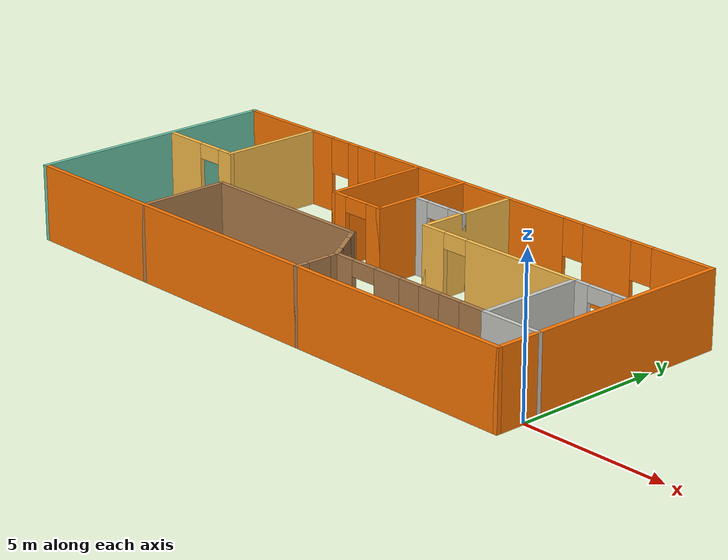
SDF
<?xml version='1.0'?>
<sdf version='1.6'>
  <model name='Building'>
    <pose frame=''>-10 3.25 0 0 -0 0</pose>
    <link name='Wall_0'>
      <collision name='Wall_0_Collision'>
        <geometry>
          <box>
            <size>20.15 0.15 2.5</size>
          </box>
        </geometry>
        <pose frame=''>0 0 1.25 0 -0 0</pose>
      </collision>
      <visual name='Wall_0_Visual'>
        <pose frame=''>0 0 1.25 0 -0 0</pose>
        <geometry>
          <box>
            <size>20.15 0.15 2.5</size>
          </box>
        </geometry>
        <material>
          <script>
            <uri>file://media/materials/scripts/gazebo.material</uri>
            <name>Gazebo/Grey</name>
          </script>
          <ambient>0.996078 0.47451 0.0196078 1</ambient>
        </material>
      </visual>
      <pose frame=''>0 -4.25 0 0 -0 0</pose>
    </link>
    <link name='Wall_10'>
      <pose frame=''>-8.5 0.75 0 0 -0 3.14159</pose>
      <visual name='Wall_10_Visual_0'>
        <pose frame=''>-1.26846 0 1.25 0 -0 0</pose>
        <geometry>
          <box>
            <size>0.613081 0.15 2.5</size>
          </box>
        </geometry>
        <material>
          <script>
            <uri>file://media/materials/scripts/gazebo.material</uri>
            <name>Gazebo/Grey</name>
          </script>
          <ambient>1 0.764706 0.305882 1</ambient>
        </material>
      </visual>
      <collision name='Wall_10_Collision_0'>
        <geometry>
          <box>
            <size>0.613081 0.15 2.5</size>
          </box>
        </geometry>
        <pose frame=''>-1.26846 0 1.25 0 -0 0</pose>
      </collision>
      <visual name='Wall_10_Visual_1'>
        <pose frame=''>0.75654 0 1.25 0 -0 0</pose>
        <geometry>
          <box>
            <size>1.63692 0.15 2.5</size>
          </box>
        </geometry>
        <material>
          <script>
            <uri>file://media/materials/scripts/gazebo.material</uri>
            <name>Gazebo/Grey</name>
          </script>
          <ambient>1 0.764706 0.305882 1</ambient>
        </material>
      </visual>
      <collision name='Wall_10_Collision_1'>
        <geometry>
          <box>
            <size>1.63692 0.15 2.5</size>
          </box>
        </geometry>
        <pose frame=''>0.75654 0 1.25 0 -0 0</pose>
      </collision>
      <visual name='Wall_10_Visual_2'>
        <pose frame=''>-0.511919 0 2.25 0 -0 0</pose>
        <geometry>
          <box>
            <size>0.9 0.15 0.5</size>
          </box>
        </geometry>
        <material>
          <script>
            <uri>file://media/materials/scripts/gazebo.material</uri>
            <name>Gazebo/Grey</name>
          </script>
          <ambient>1 0.764706 0.305882 1</ambient>
        </material>
      </visual>
      <collision name='Wall_10_Collision_2'>
        <geometry>
          <box>
            <size>0.9 0.15 0.5</size>
          </box>
        </geometry>
        <pose frame=''>-0.511919 0 2.25 0 -0 0</pose>
      </collision>
    </link>
    <link name='Wall_12'>
      <collision name='Wall_12_Collision'>
        <geometry>
          <box>
            <size>3.65 0.15 2.5</size>
          </box>
        </geometry>
        <pose frame=''>0 0 1.25 0 -0 0</pose>
      </collision>
      <visual name='Wall_12_Visual'>
        <pose frame=''>0 0 1.25 0 -0 0</pose>
        <geometry>
          <box>
            <size>3.65 0.15 2.5</size>
          </box>
        </geometry>
        <material>
          <script>
            <uri>file://media/materials/scripts/gazebo.material</uri>
            <name>Gazebo/Grey</name>
          </script>
          <ambient>0.996078 0.47451 0.0196078 1</ambient>
        </material>
      </visual>
      <pose frame=''>-2 2.5 0 0 0 -1.5708</pose>
    </link>
    <link name='Wall_14'>
      <collision name='Wall_14_Collision'>
        <geometry>
          <box>
            <size>3.65 0.15 2.5</size>
          </box>
        </geometry>
        <pose frame=''>0 0 1.25 0 -0 0</pose>
      </collision>
      <visual name='Wall_14_Visual'>
        <pose frame=''>0 0 1.25 0 -0 0</pose>
        <geometry>
          <box>
            <size>3.65 0.15 2.5</size>
          </box>
        </geometry>
        <material>
          <script>
            <uri>file://media/materials/scripts/gazebo.material</uri>
            <name>Gazebo/Grey</name>
          </script>
          <ambient>1 0.764706 0.305882 1</ambient>
        </material>
      </visual>
      <pose frame=''>2 2.5 0 0 -0 1.5708</pose>
    </link>
    <link name='Wall_16'>
      <pose frame=''>-1 0.75 0 0 -0 0</pose>
      <visual name='Wall_16_Visual_0'>
        <pose frame=''>-0.758614 0 1.25 0 -0 0</pose>
        <geometry>
          <box>
            <size>0.632771 0.15 2.5</size>
          </box>
        </geometry>
        <material>
          <script>
            <uri>file://media/materials/scripts/gazebo.material</uri>
            <name>Gazebo/Grey</name>
          </script>
          <ambient>0.996078 0.47451 0.0196078 1</ambient>
        </material>
      </visual>
      <collision name='Wall_16_Collision_0'>
        <geometry>
          <box>
            <size>0.632771 0.15 2.5</size>
          </box>
        </geometry>
        <pose frame=''>-0.758614 0 1.25 0 -0 0</pose>
      </collision>
      <visual name='Wall_16_Visual_1'>
        <pose frame=''>0.766386 0 1.25 0 -0 0</pose>
        <geometry>
          <box>
            <size>0.617229 0.15 2.5</size>
          </box>
        </geometry>
        <material>
          <script>
            <uri>file://media/materials/scripts/gazebo.material</uri>
            <name>Gazebo/Grey</name>
          </script>
          <ambient>0.996078 0.47451 0.0196078 1</ambient>
        </material>
      </visual>
      <collision name='Wall_16_Collision_1'>
        <geometry>
          <box>
            <size>0.617229 0.15 2.5</size>
          </box>
        </geometry>
        <pose frame=''>0.766386 0 1.25 0 -0 0</pose>
      </collision>
      <visual name='Wall_16_Visual_2'>
        <pose frame=''>0.007771 0 2.25 0 -0 0</pose>
        <geometry>
          <box>
            <size>0.9 0.15 0.5</size>
          </box>
        </geometry>
        <material>
          <script>
            <uri>file://media/materials/scripts/gazebo.material</uri>
            <name>Gazebo/Grey</name>
          </script>
          <ambient>0.996078 0.47451 0.0196078 1</ambient>
        </material>
      </visual>
      <collision name='Wall_16_Collision_2'>
        <geometry>
          <box>
            <size>0.9 0.15 0.5</size>
          </box>
        </geometry>
        <pose frame=''>0.007771 0 2.25 0 -0 0</pose>
      </collision>
    </link>
    <link name='Wall_17'>
      <collision name='Wall_17_Collision'>
        <geometry>
          <box>
            <size>3.65 0.15 2.5</size>
          </box>
        </geometry>
        <pose frame=''>0 0 1.25 0 -0 0</pose>
      </collision>
      <visual name='Wall_17_Visual'>
        <pose frame=''>0 0 1.25 0 -0 0</pose>
        <geometry>
          <box>
            <size>3.65 0.15 2.5</size>
          </box>
        </geometry>
        <material>
          <script>
            <uri>file://media/materials/scripts/gazebo.material</uri>
            <name>Gazebo/Grey</name>
          </script>
          <ambient>0.996078 0.47451 0.0196078 1</ambient>
        </material>
      </visual>
      <pose frame=''>0 2.5 0 0 -0 1.5708</pose>
    </link>
    <link name='Wall_19'>
      <pose frame=''>1 2.25 0 0 -0 0</pose>
      <visual name='Wall_19_Visual_0'>
        <pose frame=''>-0.761107 0 1.25 0 -0 0</pose>
        <geometry>
          <box>
            <size>0.627787 0.15 2.5</size>
          </box>
        </geometry>
        <material>
          <script>
            <uri>file://media/materials/scripts/gazebo.material</uri>
            <name>Gazebo/CeilingTiled</name>
          </script>
          <ambient>1 0.764706 0.305882 1</ambient>
        </material>
      </visual>
      <collision name='Wall_19_Collision_0'>
        <geometry>
          <box>
            <size>0.627787 0.15 2.5</size>
          </box>
        </geometry>
        <pose frame=''>-0.761107 0 1.25 0 -0 0</pose>
      </collision>
      <visual name='Wall_19_Visual_1'>
        <pose frame=''>0.763893 0 1.25 0 -0 0</pose>
        <geometry>
          <box>
            <size>0.622213 0.15 2.5</size>
          </box>
        </geometry>
        <material>
          <script>
            <uri>file://media/materials/scripts/gazebo.material</uri>
            <name>Gazebo/CeilingTiled</name>
          </script>
          <ambient>1 0.764706 0.305882 1</ambient>
        </material>
      </visual>
      <collision name='Wall_19_Collision_1'>
        <geometry>
          <box>
            <size>0.622213 0.15 2.5</size>
          </box>
        </geometry>
        <pose frame=''>0.763893 0 1.25 0 -0 0</pose>
      </collision>
      <visual name='Wall_19_Visual_2'>
        <pose frame=''>0.002787 0 2.25 0 -0 0</pose>
        <geometry>
          <box>
            <size>0.9 0.15 0.5</size>
          </box>
        </geometry>
        <material>
          <script>
            <uri>file://media/materials/scripts/gazebo.material</uri>
            <name>Gazebo/CeilingTiled</name>
          </script>
          <ambient>1 0.764706 0.305882 1</ambient>
        </material>
      </visual>
      <collision name='Wall_19_Collision_2'>
        <geometry>
          <box>
            <size>0.9 0.15 0.5</size>
          </box>
        </geometry>
        <pose frame=''>0.002787 0 2.25 0 -0 0</pose>
      </collision>
    </link>
    <link name='Wall_2'>
      <collision name='Wall_2_Collision'>
        <geometry>
          <box>
            <size>8.65 0.15 2.5</size>
          </box>
        </geometry>
        <pose frame=''>0 0 1.25 0 -0 0</pose>
      </collision>
      <visual name='Wall_2_Visual'>
        <pose frame=''>0 0 1.25 0 -0 0</pose>
        <geometry>
          <box>
            <size>8.65 0.15 2.5</size>
          </box>
        </geometry>
        <material>
          <script>
            <uri>file://media/materials/scripts/gazebo.material</uri>
            <name>Gazebo/Grey</name>
          </script>
          <ambient>0.435294 0.796078 0.67451 1</ambient>
        </material>
      </visual>
      <pose frame=''>-10 0 0 0 -0 1.5708</pose>
    </link>
    <link name='Wall_25'>
      <collision name='Wall_25_Collision'>
        <geometry>
          <box>
            <size>2.15 0.15 2.5</size>
          </box>
        </geometry>
        <pose frame=''>0 0 1.25 0 -0 0</pose>
      </collision>
      <visual name='Wall_25_Visual'>
        <pose frame=''>0 0 1.25 0 -0 0</pose>
        <geometry>
          <box>
            <size>2.15 0.15 2.5</size>
          </box>
        </geometry>
        <material>
          <script>
            <uri>file://media/materials/scripts/gazebo.material</uri>
            <name>Gazebo/CeilingTiled</name>
          </script>
          <ambient>1 1 1 1</ambient>
        </material>
      </visual>
      <pose frame=''>9 -2.75 0 0 -0 0</pose>
    </link>
    <link name='Wall_27'>
      <pose frame=''>5 0.75 0 0 -0 0</pose>
      <visual name='Wall_27_Visual_0'>
        <pose frame=''>-2.6173 0 1.25 0 -0 0</pose>
        <geometry>
          <box>
            <size>0.915403 0.15 2.5</size>
          </box>
        </geometry>
        <material>
          <script>
            <uri>file://media/materials/scripts/gazebo.material</uri>
            <name>Gazebo/Grey</name>
          </script>
          <ambient>1 0.764706 0.305882 1</ambient>
        </material>
      </visual>
      <collision name='Wall_27_Collision_0'>
        <geometry>
          <box>
            <size>0.915403 0.15 2.5</size>
          </box>
        </geometry>
        <pose frame=''>-2.6173 0 1.25 0 -0 0</pose>
      </collision>
      <visual name='Wall_27_Visual_1'>
        <pose frame=''>0.907702 0 1.25 0 -0 0</pose>
        <geometry>
          <box>
            <size>4.3346 0.15 2.5</size>
          </box>
        </geometry>
        <material>
          <script>
            <uri>file://media/materials/scripts/gazebo.material</uri>
            <name>Gazebo/Grey</name>
          </script>
          <ambient>1 0.764706 0.305882 1</ambient>
        </material>
      </visual>
      <collision name='Wall_27_Collision_1'>
        <geometry>
          <box>
            <size>4.3346 0.15 2.5</size>
          </box>
        </geometry>
        <pose frame=''>0.907702 0 1.25 0 -0 0</pose>
      </collision>
      <visual name='Wall_27_Visual_2'>
        <pose frame=''>-1.7096 0 2.25 0 -0 0</pose>
        <geometry>
          <box>
            <size>0.9 0.15 0.5</size>
          </box>
        </geometry>
        <material>
          <script>
            <uri>file://media/materials/scripts/gazebo.material</uri>
            <name>Gazebo/Grey</name>
          </script>
          <ambient>1 0.764706 0.305882 1</ambient>
        </material>
      </visual>
      <collision name='Wall_27_Collision_2'>
        <geometry>
          <box>
            <size>0.9 0.15 0.5</size>
          </box>
        </geometry>
        <pose frame=''>-1.7096 0 2.25 0 -0 0</pose>
      </collision>
    </link>
    <link name='Wall_29'>
      <collision name='Wall_29_Collision'>
        <geometry>
          <box>
            <size>3.65 0.15 2.5</size>
          </box>
        </geometry>
        <pose frame=''>0 0 1.25 0 -0 0</pose>
      </collision>
      <visual name='Wall_29_Visual'>
        <pose frame=''>0 0 1.25 0 -0 0</pose>
        <geometry>
          <box>
            <size>3.65 0.15 2.5</size>
          </box>
        </geometry>
        <material>
          <script>
            <uri>file://media/materials/scripts/gazebo.material</uri>
            <name>Gazebo/CeilingTiled</name>
          </script>
          <ambient>1 1 1 1</ambient>
        </material>
      </visual>
      <pose frame=''>8 -1 0 0 0 -1.5708</pose>
    </link>
    <link name='Wall_31'>
      <pose frame=''>9 0.75 0 0 -0 0</pose>
      <visual name='Wall_31_Visual_0'>
        <pose frame=''>-0.757777 0 1.25 0 -0 0</pose>
        <geometry>
          <box>
            <size>0.634446 0.15 2.5</size>
          </box>
        </geometry>
        <material>
          <script>
            <uri>file://media/materials/scripts/gazebo.material</uri>
            <name>Gazebo/CeilingTiled</name>
          </script>
          <ambient>1 1 1 1</ambient>
        </material>
      </visual>
      <collision name='Wall_31_Collision_0'>
        <geometry>
          <box>
            <size>0.634446 0.15 2.5</size>
          </box>
        </geometry>
        <pose frame=''>-0.757777 0 1.25 0 -0 0</pose>
      </collision>
      <visual name='Wall_31_Visual_1'>
        <pose frame=''>0.767223 0 1.25 0 -0 0</pose>
        <geometry>
          <box>
            <size>0.615554 0.15 2.5</size>
          </box>
        </geometry>
        <material>
          <script>
            <uri>file://media/materials/scripts/gazebo.material</uri>
            <name>Gazebo/CeilingTiled</name>
          </script>
          <ambient>1 1 1 1</ambient>
        </material>
      </visual>
      <collision name='Wall_31_Collision_1'>
        <geometry>
          <box>
            <size>0.615554 0.15 2.5</size>
          </box>
        </geometry>
        <pose frame=''>0.767223 0 1.25 0 -0 0</pose>
      </collision>
      <visual name='Wall_31_Visual_2'>
        <pose frame=''>0.009446 0 2.25 0 -0 0</pose>
        <geometry>
          <box>
            <size>0.9 0.15 0.5</size>
          </box>
        </geometry>
        <material>
          <script>
            <uri>file://media/materials/scripts/gazebo.material</uri>
            <name>Gazebo/CeilingTiled</name>
          </script>
          <ambient>1 1 1 1</ambient>
        </material>
      </visual>
      <collision name='Wall_31_Collision_2'>
        <geometry>
          <box>
            <size>0.9 0.15 0.5</size>
          </box>
        </geometry>
        <pose frame=''>0.009446 0 2.25 0 -0 0</pose>
      </collision>
    </link>
    <link name='Wall_35'>
      <collision name='Wall_35_Collision'>
        <geometry>
          <box>
            <size>3.15 0.15 2.5</size>
          </box>
        </geometry>
        <pose frame=''>0 0 1.25 0 -0 0</pose>
      </collision>
      <visual name='Wall_35_Visual'>
        <pose frame=''>0 0 1.25 0 -0 0</pose>
        <geometry>
          <box>
            <size>3.15 0.15 2.5</size>
          </box>
        </geometry>
        <material>
          <script>
            <uri>file://media/materials/scripts/gazebo.material</uri>
            <name>Gazebo/Wood</name>
          </script>
          <ambient>0.996078 0.47451 0.0196078 1</ambient>
        </material>
      </visual>
      <pose frame=''>-5 -2.75 0 0 0 -1.5708</pose>
    </link>
    <link name='Wall_37'>
      <collision name='Wall_37_Collision'>
        <geometry>
          <box>
            <size>6.15 0.15 2.5</size>
          </box>
        </geometry>
        <pose frame=''>0 0 1.25 0 -0 0</pose>
      </collision>
      <visual name='Wall_37_Visual'>
        <pose frame=''>0 0 1.25 0 -0 0</pose>
        <geometry>
          <box>
            <size>6.15 0.15 2.5</size>
          </box>
        </geometry>
        <material>
          <script>
            <uri>file://media/materials/scripts/gazebo.material</uri>
            <name>Gazebo/Wood</name>
          </script>
          <ambient>0.996078 0.47451 0.0196078 1</ambient>
        </material>
      </visual>
      <pose frame=''>-2 -1.25 0 0 -0 0</pose>
    </link>
    <link name='Wall_39'>
      <pose frame=''>2 -3.5 0 0 -0 1.5708</pose>
      <visual name='Wall_39_Visual_0'>
        <pose frame=''>-0.594128 0 1.25 0 -0 0</pose>
        <geometry>
          <box>
            <size>0.461743 0.15 2.5</size>
          </box>
        </geometry>
        <material>
          <script>
            <uri>file://media/materials/scripts/gazebo.material</uri>
            <name>Gazebo/Wood</name>
          </script>
          <ambient>0.996078 0.47451 0.0196078 1</ambient>
        </material>
      </visual>
      <collision name='Wall_39_Collision_0'>
        <geometry>
          <box>
            <size>0.461743 0.15 2.5</size>
          </box>
        </geometry>
        <pose frame=''>-0.594128 0 1.25 0 -0 0</pose>
      </collision>
      <visual name='Wall_39_Visual_1'>
        <pose frame=''>0.230872 0 0.25 0 -0 0</pose>
        <geometry>
          <box>
            <size>1.18826 0.15 0.5</size>
          </box>
        </geometry>
        <material>
          <script>
            <uri>file://media/materials/scripts/gazebo.material</uri>
            <name>Gazebo/Wood</name>
          </script>
          <ambient>0.996078 0.47451 0.0196078 1</ambient>
        </material>
      </visual>
      <collision name='Wall_39_Collision_1'>
        <geometry>
          <box>
            <size>1.18826 0.15 0.5</size>
          </box>
        </geometry>
        <pose frame=''>0.230872 0 0.25 0 -0 0</pose>
      </collision>
      <visual name='Wall_39_Visual_2'>
        <pose frame=''>0.630872 0 1.5 0 -0 0</pose>
        <geometry>
          <box>
            <size>0.388257 0.15 2</size>
          </box>
        </geometry>
        <material>
          <script>
            <uri>file://media/materials/scripts/gazebo.material</uri>
            <name>Gazebo/Wood</name>
          </script>
          <ambient>0.996078 0.47451 0.0196078 1</ambient>
        </material>
      </visual>
      <collision name='Wall_39_Collision_2'>
        <geometry>
          <box>
            <size>0.388257 0.15 2</size>
          </box>
        </geometry>
        <pose frame=''>0.630872 0 1.5 0 -0 0</pose>
      </collision>
      <visual name='Wall_39_Visual_3'>
        <pose frame=''>0.036743 0 1.9 0 -0 0</pose>
        <geometry>
          <box>
            <size>0.8 0.15 1.2</size>
          </box>
        </geometry>
        <material>
          <script>
            <uri>file://media/materials/scripts/gazebo.material</uri>
            <name>Gazebo/Wood</name>
          </script>
          <ambient>0.996078 0.47451 0.0196078 1</ambient>
        </material>
      </visual>
      <collision name='Wall_39_Collision_3'>
        <geometry>
          <box>
            <size>0.8 0.15 1.2</size>
          </box>
        </geometry>
        <pose frame=''>0.036743 0 1.9 0 -0 0</pose>
      </collision>
    </link>
    <link name='Wall_4'>
      <pose frame=''>0 4.25 0 0 -0 0</pose>
      <visual name='Wall_4_Visual_0'>
        <pose frame=''>-8.04057 0 1.25 0 -0 0</pose>
        <geometry>
          <box>
            <size>4.06886 0.15 2.5</size>
          </box>
        </geometry>
        <material>
          <script>
            <uri>file://media/materials/scripts/gazebo.material</uri>
            <name>Gazebo/Grey</name>
          </script>
          <ambient>0.996078 0.47451 0.0196078 1</ambient>
        </material>
      </visual>
      <collision name='Wall_4_Collision_0'>
        <geometry>
          <box>
            <size>4.06886 0.15 2.5</size>
          </box>
        </geometry>
        <pose frame=''>-8.04057 0 1.25 0 -0 0</pose>
      </collision>
      <visual name='Wall_4_Visual_1'>
        <pose frame=''>2.03443 0 0.25 0 -0 0</pose>
        <geometry>
          <box>
            <size>16.0811 0.15 0.5</size>
          </box>
        </geometry>
        <material>
          <script>
            <uri>file://media/materials/scripts/gazebo.material</uri>
            <name>Gazebo/Grey</name>
          </script>
          <ambient>0.996078 0.47451 0.0196078 1</ambient>
        </material>
      </visual>
      <collision name='Wall_4_Collision_1'>
        <geometry>
          <box>
            <size>16.0811 0.15 0.5</size>
          </box>
        </geometry>
        <pose frame=''>2.03443 0 0.25 0 -0 0</pose>
      </collision>
      <visual name='Wall_4_Visual_2'>
        <pose frame=''>-4.97904 0 1.5 0 -0 0</pose>
        <geometry>
          <box>
            <size>0.4542 0.15 2</size>
          </box>
        </geometry>
        <material>
          <script>
            <uri>file://media/materials/scripts/gazebo.material</uri>
            <name>Gazebo/Grey</name>
          </script>
          <ambient>0.996078 0.47451 0.0196078 1</ambient>
        </material>
      </visual>
      <collision name='Wall_4_Collision_2'>
        <geometry>
          <box>
            <size>0.4542 0.15 2</size>
          </box>
        </geometry>
        <pose frame=''>-4.97904 0 1.5 0 -0 0</pose>
      </collision>
      <visual name='Wall_4_Visual_3'>
        <pose frame=''>0.175411 0 1.5 0 -0 0</pose>
        <geometry>
          <box>
            <size>8.25471 0.15 2</size>
          </box>
        </geometry>
        <material>
          <script>
            <uri>file://media/materials/scripts/gazebo.material</uri>
            <name>Gazebo/Grey</name>
          </script>
          <ambient>0.996078 0.47451 0.0196078 1</ambient>
        </material>
      </visual>
      <collision name='Wall_4_Collision_3'>
        <geometry>
          <box>
            <size>8.25471 0.15 2</size>
          </box>
        </geometry>
        <pose frame=''>0.175411 0 1.5 0 -0 0</pose>
      </collision>
      <visual name='Wall_4_Visual_4'>
        <pose frame=''>6.04873 0 1.5 0 -0 0</pose>
        <geometry>
          <box>
            <size>1.89194 0.15 2</size>
          </box>
        </geometry>
        <material>
          <script>
            <uri>file://media/materials/scripts/gazebo.material</uri>
            <name>Gazebo/Grey</name>
          </script>
          <ambient>0.996078 0.47451 0.0196078 1</ambient>
        </material>
      </visual>
      <collision name='Wall_4_Collision_4'>
        <geometry>
          <box>
            <size>1.89194 0.15 2</size>
          </box>
        </geometry>
        <pose frame=''>6.04873 0 1.5 0 -0 0</pose>
      </collision>
      <visual name='Wall_4_Visual_5'>
        <pose frame=''>8.93485 0 1.5 0 -0 0</pose>
        <geometry>
          <box>
            <size>2.2803 0.15 2</size>
          </box>
        </geometry>
        <material>
          <script>
            <uri>file://media/materials/scripts/gazebo.material</uri>
            <name>Gazebo/Grey</name>
          </script>
          <ambient>0.996078 0.47451 0.0196078 1</ambient>
        </material>
      </visual>
      <collision name='Wall_4_Collision_5'>
        <geometry>
          <box>
            <size>2.2803 0.15 2</size>
          </box>
        </geometry>
        <pose frame=''>8.93485 0 1.5 0 -0 0</pose>
      </collision>
      <visual name='Wall_4_Visual_6'>
        <pose frame=''>-5.60614 0 1.9 0 -0 0</pose>
        <geometry>
          <box>
            <size>0.8 0.15 1.2</size>
          </box>
        </geometry>
        <material>
          <script>
            <uri>file://media/materials/scripts/gazebo.material</uri>
            <name>Gazebo/Grey</name>
          </script>
          <ambient>0.996078 0.47451 0.0196078 1</ambient>
        </material>
      </visual>
      <collision name='Wall_4_Collision_6'>
        <geometry>
          <box>
            <size>0.8 0.15 1.2</size>
          </box>
        </geometry>
        <pose frame=''>-5.60614 0 1.9 0 -0 0</pose>
      </collision>
      <visual name='Wall_4_Visual_7'>
        <pose frame=''>-4.35194 0 1.9 0 -0 0</pose>
        <geometry>
          <box>
            <size>0.8 0.15 1.2</size>
          </box>
        </geometry>
        <material>
          <script>
            <uri>file://media/materials/scripts/gazebo.material</uri>
            <name>Gazebo/Grey</name>
          </script>
          <ambient>0.996078 0.47451 0.0196078 1</ambient>
        </material>
      </visual>
      <collision name='Wall_4_Collision_7'>
        <geometry>
          <box>
            <size>0.8 0.15 1.2</size>
          </box>
        </geometry>
        <pose frame=''>-4.35194 0 1.9 0 -0 0</pose>
      </collision>
      <visual name='Wall_4_Visual_8'>
        <pose frame=''>4.70276 0 1.9 0 -0 0</pose>
        <geometry>
          <box>
            <size>0.8 0.15 1.2</size>
          </box>
        </geometry>
        <material>
          <script>
            <uri>file://media/materials/scripts/gazebo.material</uri>
            <name>Gazebo/Grey</name>
          </script>
          <ambient>0.996078 0.47451 0.0196078 1</ambient>
        </material>
      </visual>
      <collision name='Wall_4_Collision_8'>
        <geometry>
          <box>
            <size>0.8 0.15 1.2</size>
          </box>
        </geometry>
        <pose frame=''>4.70276 0 1.9 0 -0 0</pose>
      </collision>
      <visual name='Wall_4_Visual_9'>
        <pose frame=''>7.3947 0 1.9 0 -0 0</pose>
        <geometry>
          <box>
            <size>0.8 0.15 1.2</size>
          </box>
        </geometry>
        <material>
          <script>
            <uri>file://media/materials/scripts/gazebo.material</uri>
            <name>Gazebo/Grey</name>
          </script>
          <ambient>0.996078 0.47451 0.0196078 1</ambient>
        </material>
      </visual>
      <collision name='Wall_4_Collision_9'>
        <geometry>
          <box>
            <size>0.8 0.15 1.2</size>
          </box>
        </geometry>
        <pose frame=''>7.3947 0 1.9 0 -0 0</pose>
      </collision>
    </link>
    <link name='Wall_41'>
      <pose frame=''>1.5 -2 0 0 0 -0.982794</pose>
      <visual name='Wall_41_Visual_0'>
        <pose frame=''>-0.69985 0 1.25 0 -0 0</pose>
        <geometry>
          <box>
            <size>0.553076 0.15 2.5</size>
          </box>
        </geometry>
        <material>
          <script>
            <uri>file://media/materials/scripts/gazebo.material</uri>
            <name>Gazebo/Wood</name>
          </script>
          <ambient>0.996078 0.47451 0.0196078 1</ambient>
        </material>
      </visual>
      <collision name='Wall_41_Collision_0'>
        <geometry>
          <box>
            <size>0.553076 0.15 2.5</size>
          </box>
        </geometry>
        <pose frame=''>-0.69985 0 1.25 0 -0 0</pose>
      </collision>
      <visual name='Wall_41_Visual_1'>
        <pose frame=''>0.726538 0 1.25 0 -0 0</pose>
        <geometry>
          <box>
            <size>0.4997 0.15 2.5</size>
          </box>
        </geometry>
        <material>
          <script>
            <uri>file://media/materials/scripts/gazebo.material</uri>
            <name>Gazebo/Wood</name>
          </script>
          <ambient>0.996078 0.47451 0.0196078 1</ambient>
        </material>
      </visual>
      <collision name='Wall_41_Collision_1'>
        <geometry>
          <box>
            <size>0.4997 0.15 2.5</size>
          </box>
        </geometry>
        <pose frame=''>0.726538 0 1.25 0 -0 0</pose>
      </collision>
      <visual name='Wall_41_Visual_2'>
        <pose frame=''>0.026688 0 2.25 0 -0 0</pose>
        <geometry>
          <box>
            <size>0.9 0.15 0.5</size>
          </box>
        </geometry>
        <material>
          <script>
            <uri>file://media/materials/scripts/gazebo.material</uri>
            <name>Gazebo/Wood</name>
          </script>
          <ambient>0.996078 0.47451 0.0196078 1</ambient>
        </material>
      </visual>
      <collision name='Wall_41_Collision_2'>
        <geometry>
          <box>
            <size>0.9 0.15 0.5</size>
          </box>
        </geometry>
        <pose frame=''>0.026688 0 2.25 0 -0 0</pose>
      </collision>
    </link>
    <link name='Wall_43'>
      <pose frame=''>5 -2.75 0 0 -0 0</pose>
      <visual name='Wall_43_Visual_0'>
        <pose frame=''>-2.67402 0 1.25 0 -0 0</pose>
        <geometry>
          <box>
            <size>0.801957 0.15 2.5</size>
          </box>
        </geometry>
        <material>
          <script>
            <uri>file://media/materials/scripts/gazebo.material</uri>
            <name>Gazebo/Wood</name>
          </script>
          <ambient>1 1 1 1</ambient>
        </material>
      </visual>
      <collision name='Wall_43_Collision_0'>
        <geometry>
          <box>
            <size>0.801957 0.15 2.5</size>
          </box>
        </geometry>
        <pose frame=''>-2.67402 0 1.25 0 -0 0</pose>
      </collision>
      <visual name='Wall_43_Visual_1'>
        <pose frame=''>-0.853736 0 1.25 0 -0 0</pose>
        <geometry>
          <box>
            <size>1.03861 0.15 2.5</size>
          </box>
        </geometry>
        <material>
          <script>
            <uri>file://media/materials/scripts/gazebo.material</uri>
            <name>Gazebo/Wood</name>
          </script>
          <ambient>1 1 1 1</ambient>
        </material>
      </visual>
      <collision name='Wall_43_Collision_1'>
        <geometry>
          <box>
            <size>1.03861 0.15 2.5</size>
          </box>
        </geometry>
        <pose frame=''>-0.853736 0 1.25 0 -0 0</pose>
      </collision>
      <visual name='Wall_43_Visual_2'>
        <pose frame=''>1.37029 0 0.25 0 -0 0</pose>
        <geometry>
          <box>
            <size>3.40943 0.15 0.5</size>
          </box>
        </geometry>
        <material>
          <script>
            <uri>file://media/materials/scripts/gazebo.material</uri>
            <name>Gazebo/Wood</name>
          </script>
          <ambient>1 1 1 1</ambient>
        </material>
      </visual>
      <collision name='Wall_43_Collision_2'>
        <geometry>
          <box>
            <size>3.40943 0.15 0.5</size>
          </box>
        </geometry>
        <pose frame=''>1.37029 0 0.25 0 -0 0</pose>
      </collision>
      <visual name='Wall_43_Visual_3'>
        <pose frame=''>0.863577 0 1.5 0 -0 0</pose>
        <geometry>
          <box>
            <size>0.796012 0.15 2</size>
          </box>
        </geometry>
        <material>
          <script>
            <uri>file://media/materials/scripts/gazebo.material</uri>
            <name>Gazebo/Wood</name>
          </script>
          <ambient>1 1 1 1</ambient>
        </material>
      </visual>
      <collision name='Wall_43_Collision_3'>
        <geometry>
          <box>
            <size>0.796012 0.15 2</size>
          </box>
        </geometry>
        <pose frame=''>0.863577 0 1.5 0 -0 0</pose>
      </collision>
      <visual name='Wall_43_Visual_4'>
        <pose frame=''>2.56829 0 1.5 0 -0 0</pose>
        <geometry>
          <box>
            <size>1.01342 0.15 2</size>
          </box>
        </geometry>
        <material>
          <script>
            <uri>file://media/materials/scripts/gazebo.material</uri>
            <name>Gazebo/Wood</name>
          </script>
          <ambient>1 1 1 1</ambient>
        </material>
      </visual>
      <collision name='Wall_43_Collision_4'>
        <geometry>
          <box>
            <size>1.01342 0.15 2</size>
          </box>
        </geometry>
        <pose frame=''>2.56829 0 1.5 0 -0 0</pose>
      </collision>
      <visual name='Wall_43_Visual_5'>
        <pose frame=''>0.065571 0 1.9 0 -0 0</pose>
        <geometry>
          <box>
            <size>0.8 0.15 1.2</size>
          </box>
        </geometry>
        <material>
          <script>
            <uri>file://media/materials/scripts/gazebo.material</uri>
            <name>Gazebo/Wood</name>
          </script>
          <ambient>1 1 1 1</ambient>
        </material>
      </visual>
      <collision name='Wall_43_Collision_5'>
        <geometry>
          <box>
            <size>0.8 0.15 1.2</size>
          </box>
        </geometry>
        <pose frame=''>0.065571 0 1.9 0 -0 0</pose>
      </collision>
      <visual name='Wall_43_Visual_6'>
        <pose frame=''>1.66158 0 1.9 0 -0 0</pose>
        <geometry>
          <box>
            <size>0.8 0.15 1.2</size>
          </box>
        </geometry>
        <material>
          <script>
            <uri>file://media/materials/scripts/gazebo.material</uri>
            <name>Gazebo/Wood</name>
          </script>
          <ambient>1 1 1 1</ambient>
        </material>
      </visual>
      <collision name='Wall_43_Collision_6'>
        <geometry>
          <box>
            <size>0.8 0.15 1.2</size>
          </box>
        </geometry>
        <pose frame=''>1.66158 0 1.9 0 -0 0</pose>
      </collision>
      <visual name='Wall_43_Visual_7'>
        <pose frame=''>-1.82304 0 2.25 0 -0 0</pose>
        <geometry>
          <box>
            <size>0.9 0.15 0.5</size>
          </box>
        </geometry>
        <material>
          <script>
            <uri>file://media/materials/scripts/gazebo.material</uri>
            <name>Gazebo/Wood</name>
          </script>
          <ambient>1 1 1 1</ambient>
        </material>
      </visual>
      <collision name='Wall_43_Collision_7'>
        <geometry>
          <box>
            <size>0.9 0.15 0.5</size>
          </box>
        </geometry>
        <pose frame=''>-1.82304 0 2.25 0 -0 0</pose>
      </collision>
    </link>
    <link name='Wall_6'>
      <collision name='Wall_6_Collision'>
        <geometry>
          <box>
            <size>8.65 0.15 2.5</size>
          </box>
        </geometry>
        <pose frame=''>0 0 1.25 0 -0 0</pose>
      </collision>
      <visual name='Wall_6_Visual'>
        <pose frame=''>0 0 1.25 0 -0 0</pose>
        <geometry>
          <box>
            <size>8.65 0.15 2.5</size>
          </box>
        </geometry>
        <material>
          <script>
            <uri>file://media/materials/scripts/gazebo.material</uri>
            <name>Gazebo/Grey</name>
          </script>
          <ambient>0.996078 0.47451 0.0196078 1</ambient>
        </material>
      </visual>
      <pose frame=''>10 0 0 0 0 -1.5708</pose>
    </link>
    <link name='Wall_8'>
      <collision name='Wall_8_Collision'>
        <geometry>
          <box>
            <size>3.65 0.15 2.5</size>
          </box>
        </geometry>
        <pose frame=''>0 0 1.25 0 -0 0</pose>
      </collision>
      <visual name='Wall_8_Visual'>
        <pose frame=''>0 0 1.25 0 -0 0</pose>
        <geometry>
          <box>
            <size>3.65 0.15 2.5</size>
          </box>
        </geometry>
        <material>
          <script>
            <uri>file://media/materials/scripts/gazebo.material</uri>
            <name>Gazebo/Grey</name>
          </script>
          <ambient>1 0.764706 0.305882 1</ambient>
        </material>
      </visual>
      <pose frame=''>-7 2.5 0 0 0 -1.5708</pose>
    </link>
    <static>1</static>
  </model>
</sdf>
